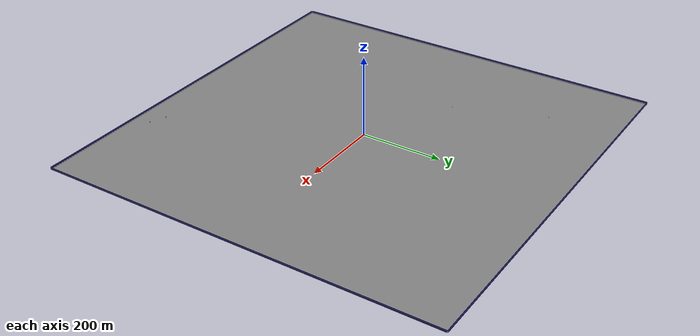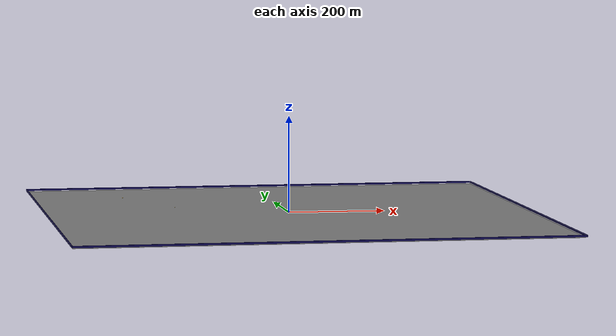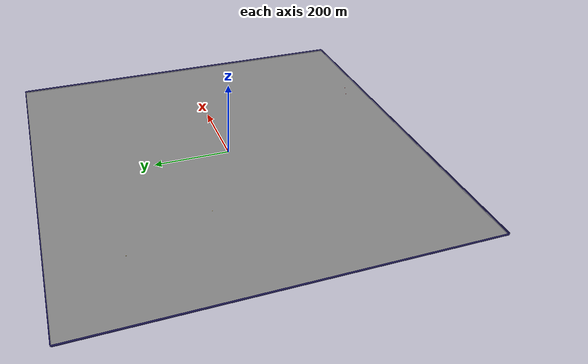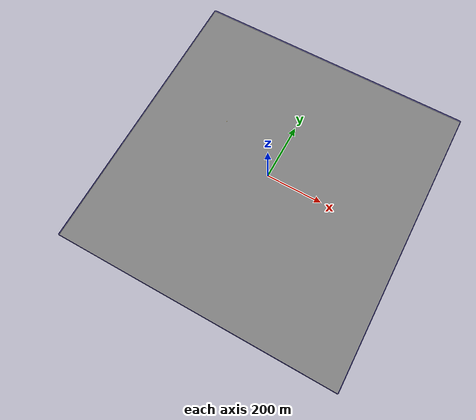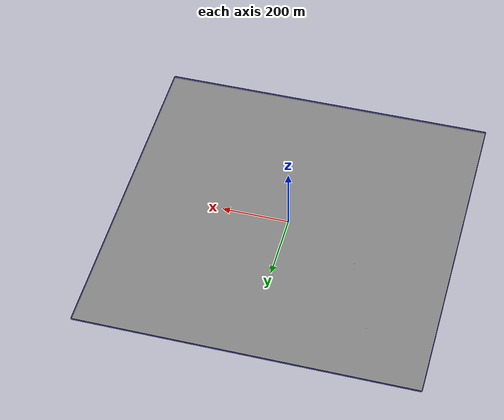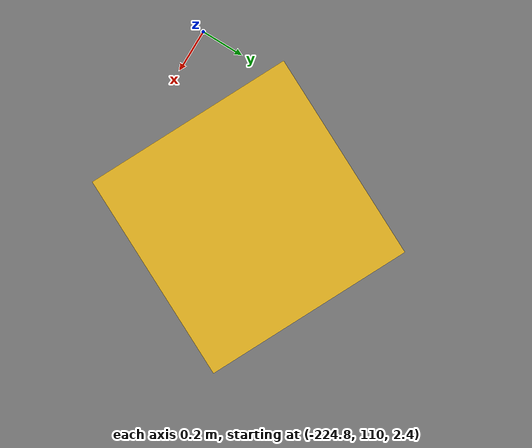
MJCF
<mujoco model="unnamed_model">
  <default>
    <default class="/" />
    <default class="border/" />
    <default class="border_1/" />
    <default class="border_2/" />
    <default class="border_3/" />
    <default class="agentplaceholder/" />
    <default class="placeholder_box/" />
    <default class="stone0/" />
    <default class="stone1/" />
    <default class="tree/" />
    <default class="tree_1/" />
  </default>
  <worldbody>
    <body name="border/">
      <body name="border/border" pos="0 501 2">
        <geom name="border/border_geom" class="border/" type="box" size="500 1 2" rgba="0.035000000000000003 0.016 0.28999999999999998 1" />
      </body>
    </body>
    <body name="border_1/">
      <body name="border_1/border" pos="0 -501 2">
        <geom name="border_1/border_geom" class="border_1/" type="box" size="500 1 2" rgba="0.035000000000000003 0.016 0.28999999999999998 1" />
      </body>
    </body>
    <body name="border_2/">
      <body name="border_2/border" pos="501 0 2">
        <geom name="border_2/border_geom" class="border_2/" type="box" size="1 500 2" rgba="0.035000000000000003 0.016 0.28999999999999998 1" />
      </body>
    </body>
    <body name="border_3/">
      <body name="border_3/border" pos="-501 0 2">
        <geom name="border_3/border_geom" class="border_3/" type="box" size="1 500 2" rgba="0.035000000000000003 0.016 0.28999999999999998 1" />
      </body>
    </body>
    <body euler="0 0 -26.256393758702757" name="agentplaceholder/">
      <joint name="agentplaceholder/boxagent_freeJoint/" class="/" type="free" />
      <body name="agentplaceholder/agentplaceholder" pos="-250 0 3" euler="0 0 0">
        <geom name="agentplaceholder/boxagent_geom" class="agentplaceholder/" type="box" size="0.5 0.5 0.5" rgba="0.94899999999999995 0.74509999999999998 0.1333 1" euler="0 0 0" />
      </body>
    </body>
    <body name="placeholder_box/">
      <body name="placeholder_box/placeholder_box" pos="-308.33614999999998 328.03140000000008 0.5" euler="0 0 40.838865692557391">
        <geom name="placeholder_box/box_geom" class="placeholder_box/" type="box" size="0.5 0.5 0.5" rgba="0.94899999999999995 0.74509999999999998 0.1333 1" euler="0 0 0" />
      </body>
    </body>
    <body name="stone0/">
      <body name="stone0/stone0" pos="351.33879999999999 -146.30409999999995 0.10000000000000001" euler="0 0 -168.62457964183503">
        <geom name="stone0/stone_geom" class="stone0/" type="box" size="0.10000000000000001 0.10000000000000001 2" rgba="1 0 0 1" />
      </body>
    </body>
    <body name="stone1/">
      <body name="stone1/stone1" pos="313.89954999999998 -438.67000000000002 0.10000000000000001" euler="0 0 -51.995110329180932">
        <geom name="stone1/stone_geom" class="stone1/" type="box" size="0.10000000000000001 0.10000000000000001 2" rgba="1 0 0 1" />
      </body>
    </body>
    <body name="tree/">
      <body name="tree/tree" pos="189.81765000000001 -441.67419999999998 0.10000000000000001" euler="0 0 -110.35290582868957">
        <geom name="tree/tree_geom" class="tree/" type="box" size="0.10000000000000001 0.10000000000000001 2" rgba="1 0 0 1" />
      </body>
    </body>
    <body name="tree_1/">
      <body name="tree_1/tree" pos="228.27594999999999 -457.6345 0.10000000000000001" euler="0 0 19.642576249013331">
        <geom name="tree_1/tree_geom" class="tree_1/" type="box" size="0.10000000000000001 0.10000000000000001 2" rgba="1 0 0 1" />
      </body>
    </body>
    <geom name="base_plane" class="/" type="plane" size="500 500 0.10000000000000001" />
  </worldbody>
</mujoco>
